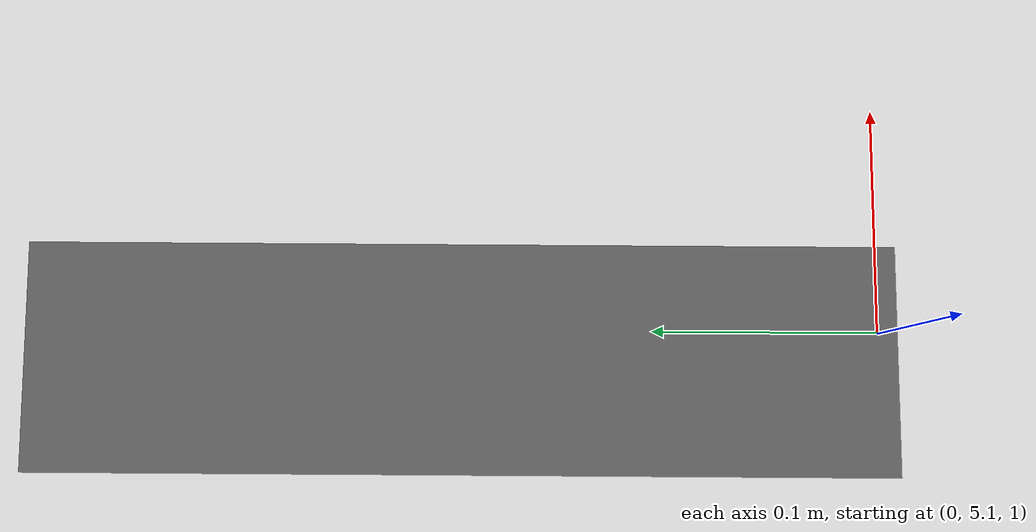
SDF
<?xml version="1.0" ?>
<!-- tmp sdf file generated from LISDF -->
<sdf version="1.9">
  <world name="tmp_world">

<model name="counter_back#2">
  <static>True</static>
  <pose>-0.014999999664723873 5.283999919891357 1.024999976158142 0.0 -0.0 0.0</pose>
  <link name="box">

    <inertial>
      <mass>0</mass>
      <pose>0.0 0.0 0.0 0.0 -0.0 0.0</pose>
      <inertia>
        <ixx>0</ixx>
        <ixy>0</ixy>
        <ixz>0</ixz>
        <iyy>0</iyy>
        <iyz>0</iyz>
        <izz>0</izz>
      </inertia>
    </inertial>
    <collision name="box_collision">>
      <pose>0.0 0.0 0.0 0.0 -0.0 0.0</pose>
      <geometry>
        <box>
          <size>0.09300000220537186 0.3529999852180481 0.05000000074505806</size>
        </box>
      </geometry>

    </collision>
    <visual name="box_visual">
      <pose>0.0 0.0 0.0 0.0 -0.0 0.0</pose>
      <geometry>
        <box>
          <size>0.09300000220537186 0.3529999852180481 0.05000000074505806</size>
        </box>
      </geometry>
      <material>
        <ambient>1.0 1.0 1.0 1.0</ambient>
        <diffuse>0.4000000059604645 0.4000000059604645 0.4000000059604645 1.0</diffuse>
        <specular>0.0 0.0 0.0 1.0</specular>
        <emissive>0.0 0.0 0.0 1.0</emissive>
      </material>
      <cast_shadows>True</cast_shadows>
    </visual>
    <self_collide>True</self_collide>
  </link>

</model>

  </world>
</sdf>
